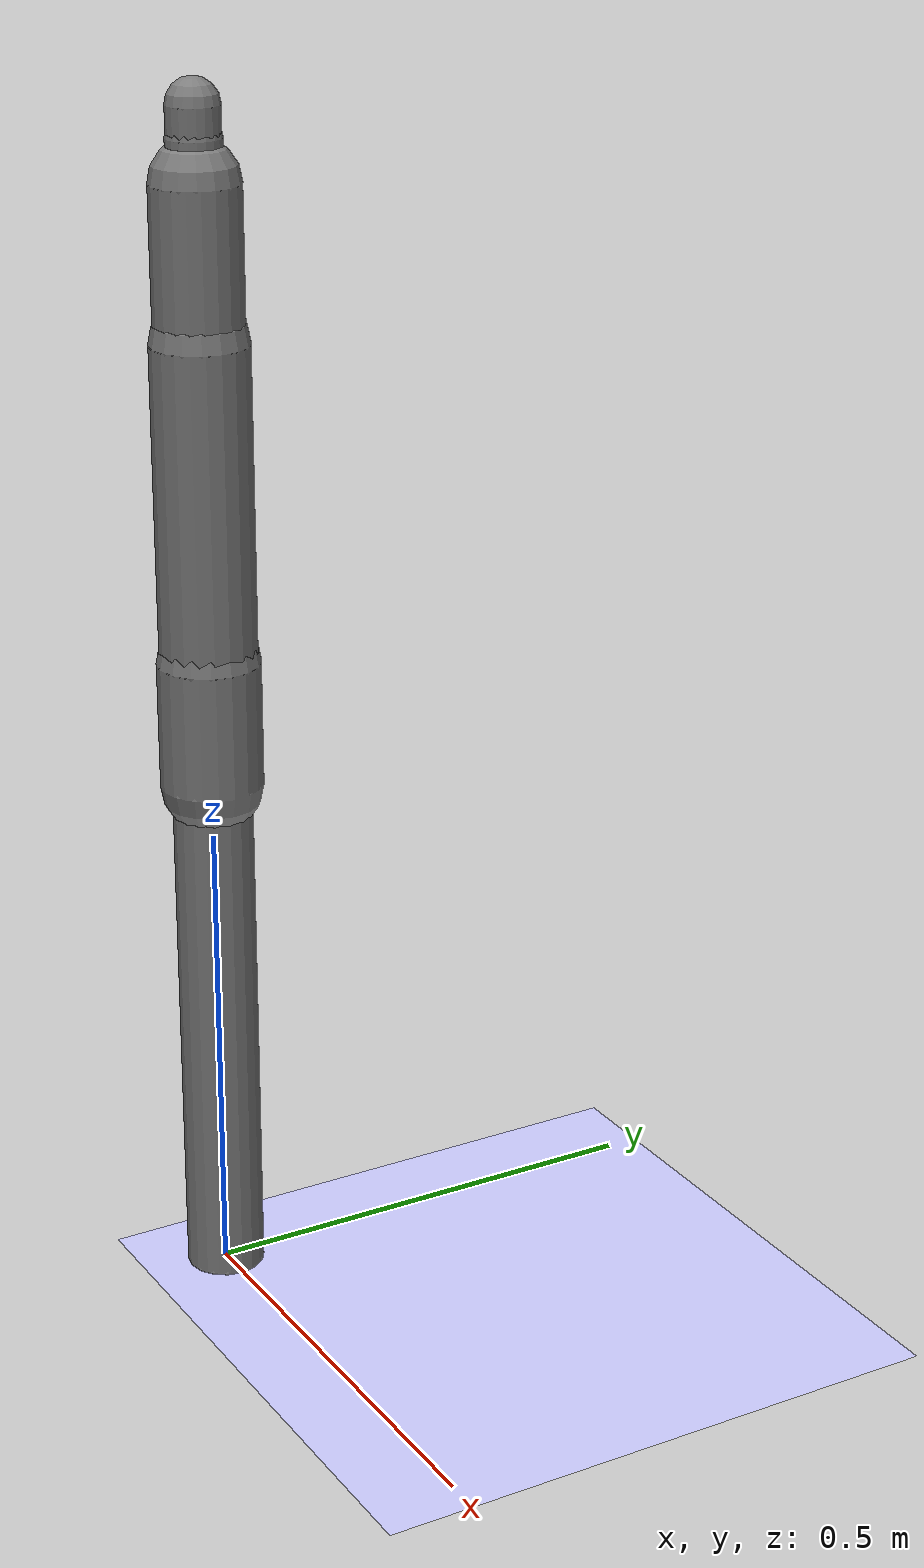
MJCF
<?xml version='1.0' encoding='UTF-8'?>
<mujoco model="robot_model">
  <worldbody>
    <light name="light" pos="0 -3 10" dir="0 0.5 -1" diffuse=".8 .8 .8" specular="0.1 0.1 0.1"/>
    <geom name="floor" type="plane" size="10.0 10.0 0.1" pos="0 0 0" rgba="0.8 0.8 1 1" contype="2" conaffinity="1"/>
    <body name="limb0" pos="0 0 0">
      <geom type="capsule" fromto="0 0 0 0 0 0.5946762414744745" size="0.041693984338746735" density="1169.031548979222" contype="1" conaffinity="2"/>
      <site type="sphere" size="0.01" name="limb0_site0" pos="0 0 0.5605754184076376"/>
      <site type="sphere" size="0.01" name="limb0_site1" pos="0 0 0.5600102771438897"/>
      <freejoint name="limb0_root"/>
      <body name="limb1" pos="0 0 0.5605754184076376">
        <geom type="capsule" fromto="0 0 0 0 0 0.2108483557747831" size="0.03176305440673138" density="688.7771406626807" contype="1" conaffinity="2"/>
        <site type="sphere" size="0.01" name="limb1_site0" pos="0 0 0.1315488757351795"/>
        <site type="sphere" size="0.01" name="limb1_site1" pos="0 0 0.20255461164896735"/>
        <body name="limb2" pos="0 0 0.1315488757351795">
          <geom type="capsule" fromto="0 0 0 0 0 0.328612757384137" size="0.05065179609246566" density="732.5468624136837" contype="1" conaffinity="2"/>
          <joint name="joint_limb1_limb2_0" type="hinge" axis="0 1 0" range="-79.19027832141104 79.19027832141104" damping="5.0"/>
        </body>
        <body name="limb3" pos="0 0 0.20255461164896735">
          <geom type="capsule" fromto="0 0 0 0 0 0.4886525017141072" size="0.02730849030649112" density="1118.1587480940386" contype="1" conaffinity="2"/>
          <site type="sphere" size="0.01" name="limb3_site0" pos="0 0 0.2148602362279738"/>
          <site type="sphere" size="0.01" name="limb3_site1" pos="0 0 0.2502629485534305"/>
          <body name="limb4" pos="0 0 0.2148602362279738">
            <geom type="capsule" fromto="0 0 0 0 0 0.19942307054689806" size="0.04609395862756084" density="1147.4288306062897" contype="1" conaffinity="2"/>
            <joint name="joint_limb3_limb4_0" type="hinge" axis="0 1 0" range="-98.89882698854483 98.89882698854483" damping="5.0"/>
          </body>
          <body name="limb5" pos="0 0 0.2502629485534305">
            <geom type="capsule" fromto="0 0 0 0 0 0.20694704286226942" size="0.028248518027127554" density="779.5591375212996" contype="1" conaffinity="2"/>
            <joint name="joint_limb3_limb5_0" type="hinge" axis="1 0 0" range="-39.46093477322345 39.46093477322345" damping="5.0"/>
          </body>
          <joint name="joint_limb1_limb3_0" type="hinge" axis="0 1 0" range="-80.38696577407528 80.38696577407528" damping="5.0"/>
        </body>
        <joint name="joint_limb0_limb1_0" type="hinge" axis="0 1 0" range="-98.3708742457562 98.3708742457562" damping="5.0"/>
      </body>
      <body name="limb6" pos="0 0 0.5600102771438897">
        <geom type="capsule" fromto="0 0 0 0 0 0.13252947652278277" size="0.05372058858359962" density="1100.1826029615775" contype="1" conaffinity="2"/>
        <site type="sphere" size="0.01" name="limb6_site0" pos="0 0 0.0018206712109859072"/>
        <body name="limb7" pos="0 0 0.0018206712109859072">
          <geom type="capsule" fromto="0 0 0 0 0 0.3297643075211269" size="0.03183707388037653" density="514.4016674114245" contype="1" conaffinity="2"/>
          <joint name="joint_limb6_limb7_0" type="hinge" axis="1 0 0" range="-57.57048859145458 57.57048859145458" damping="5.0"/>
        </body>
        <joint name="joint_limb0_limb6_0" type="hinge" axis="0 1 0" range="-46.186401585393725 46.186401585393725" damping="5.0"/>
      </body>
    </body>
  </worldbody>
  <actuator>
    <position name="position_actuator_joint_limb0_limb1_0" joint="joint_limb0_limb1_0" gear="1.2084304557007752" inheritrange="1" kp="100.0"/>
    <position name="position_actuator_joint_limb1_limb2_0" joint="joint_limb1_limb2_0" gear="1.0104857860709995" inheritrange="1" kp="100.0"/>
    <position name="position_actuator_joint_limb1_limb3_0" joint="joint_limb1_limb3_0" gear="1.272740550353963" inheritrange="1" kp="100.0"/>
    <position name="position_actuator_joint_limb3_limb4_0" joint="joint_limb3_limb4_0" gear="1.1120952926298953" inheritrange="1" kp="100.0"/>
    <position name="position_actuator_joint_limb3_limb5_0" joint="joint_limb3_limb5_0" gear="1.6699171564828723" inheritrange="1" kp="100.0"/>
    <position name="position_actuator_joint_limb0_limb6_0" joint="joint_limb0_limb6_0" gear="0.5181521235082891" inheritrange="1" kp="100.0"/>
    <position name="position_actuator_joint_limb6_limb7_0" joint="joint_limb6_limb7_0" gear="1.5339068247322685" inheritrange="1" kp="100.0"/>
  </actuator>
</mujoco>
